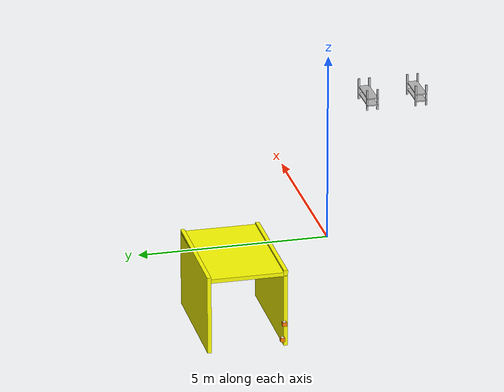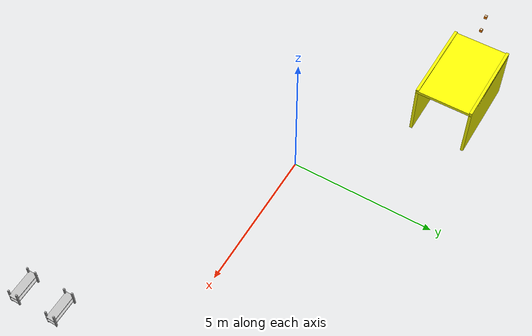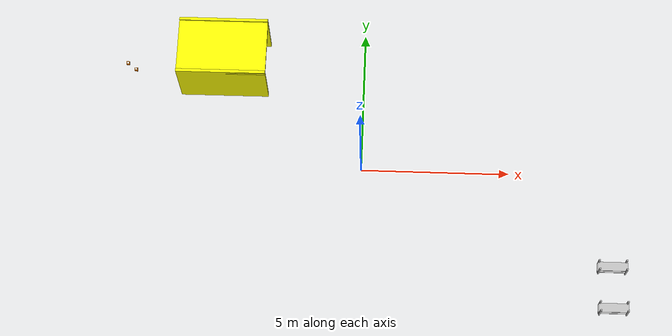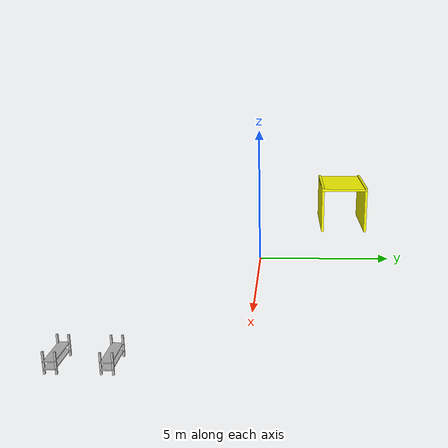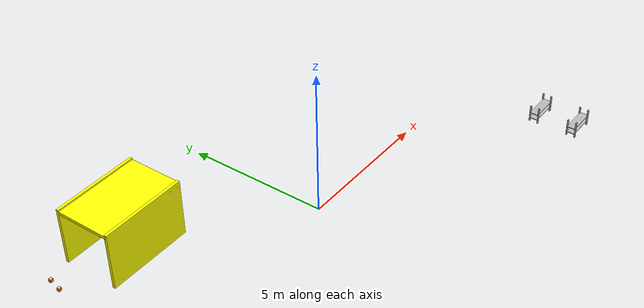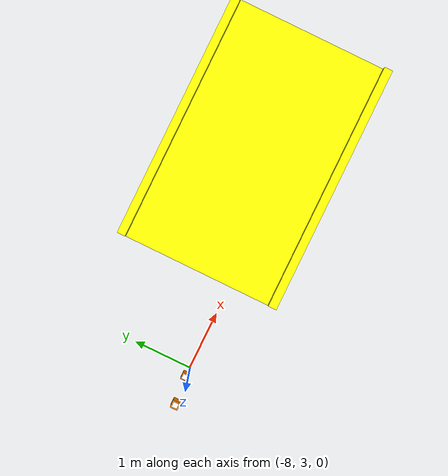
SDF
<sdf version="1.5">
 <world name="personal_project_world">
  <physics name="default_physics" default="0" type="ode">
   <gravity>0 0 -9.8066</gravity>
   <ode>
    <solver>
     <type>quick</type>
     <iters>5</iters>
     <sor>1.3</sor>
     <use_dynamic_moi_rescaling>0</use_dynamic_moi_rescaling>
    </solver>
    <constraints>
     <cfm>0</cfm>
     <erp>0.2</erp>
     <contact_max_correcting_vel>100</contact_max_correcting_vel>
     <contact_surface_layer>0.001</contact_surface_layer>
     <max_contacts>4</max_contacts>
    </constraints>
   </ode>
   <max_step_size>0.007</max_step_size>
   <real_time_factor>1</real_time_factor>
   <real_time_update_rate>50</real_time_update_rate>
   <magnetic_field>6.0e-6 2.3e-5 -4.2e-5</magnetic_field>
  </physics>
  <light type="directional" name="sun">
   <pose>0 0 10 0 0 0</pose>
   <diffuse>0.6 0.4 0.2 1</diffuse>
   <specular>0.2 0.2 0.2 1</specular>
   <attenuation>
    <range>1000</range>
    <constant>0.9</constant>
    <linear>0.01</linear>
    <quadratic>0.001</quadratic>
   </attenuation>
   <direction>-0.5 0.1 -0.9</direction>
  </light>
  <include><name>rect_tunnel</name><pose>-4.8 3.6 0.1 0 0 0</pose><uri>model://rect_tunnel</uri></include>
  <include><name>shelf_1</name><pose>8.40 -4.70 0.1 0 0 0</pose><uri>model://shelf</uri></include>
  <include><name>shelf_2</name><pose>8.40 -3.30 0.1 0 0 0</pose><uri>model://shelf</uri></include>
  <plugin filename="gz-sim-physics-system" name="gz::sim::systems::Physics"/>
  <plugin filename="gz-sim-user-commands-system" name="gz::sim::systems::UserCommands"/>
  <plugin filename="gz-sim-scene-broadcaster-system" name="gz::sim::systems::SceneBroadcaster"/>
  <model name="package1">
   <pose>-7.8 3.10 1.0 0 0 0</pose>
   <static>false</static>
   <link name="package_link">
    <inertial>
     <mass>0.1</mass>
     <inertia>
      <ixx>0.000027</ixx>
      <iyy>0.000027</iyy>
      <izz>0.0000375</izz>
      <ixy>0</ixy>
      <ixz>0</ixz>
      <iyz>0</iyz>
     </inertia>
     <linear_damping>10.0</linear_damping>
     <angular_damping>10.0</angular_damping>
    </inertial>
    <collision name="collision">
     <geometry><box><size>0.1 0.1 0.1</size></box></geometry>
     <surface>
      <friction><ode><mu>1000000.0</mu><mu2>50000.0</mu2></ode></friction>
      <contact><ode><kp>10.0</kp><kd>1.0</kd><min_depth>0.001</min_depth><max_vel>0.1</max_vel></ode></contact>
     </surface>
    </collision>
    <visual name="visual">
     <geometry><box><size>0.1 0.1 0.1</size></box></geometry>
     <material><ambient>1 0.5 0 1</ambient><diffuse>1 0.5 0 1</diffuse></material>
    </visual>
   </link>
   <include><uri>model://aruco0</uri><pose>0 0 0.051 0 0 4.71</pose></include>
   <joint name="tag_joint_1" type="fixed"><parent>package_link</parent><child>aruco0::aruco_link</child></joint>
  </model>
  <model name="package2">
   <pose>-8.0 3.10 1.5 0 0 0</pose>
   <static>false</static>
   <link name="package_link">
    <inertial>
     <mass>0.1</mass>
     <inertia>
      <ixx>0.000027</ixx>
      <iyy>0.000027</iyy>
      <izz>0.0000375</izz>
      <ixy>0</ixy>
      <ixz>0</ixz>
      <iyz>0</iyz>
     </inertia>
     <linear_damping>10.0</linear_damping>
     <angular_damping>10.0</angular_damping>
    </inertial>
    <collision name="collision"><geometry><box><size>0.1 0.1 0.1</size></box></geometry></collision>
    <visual name="visual">
     <geometry><box><size>0.1 0.1 0.1</size></box></geometry>
     <material><ambient>1 0.5 0 1</ambient><diffuse>1 0.5 0 1</diffuse></material>
    </visual>
   </link>
   <include><uri>model://aruco999</uri><pose>0 0 0.051 0 0 1.57</pose></include>
   <joint name="tag_joint_2" type="fixed">
    <parent>package_link</parent>
    <child>aruco999::aruco_link</child>
   </joint>
  </model>
 </world>
</sdf>

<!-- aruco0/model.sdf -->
<sdf version="1.6">
  <model name="aruco0">
    <static>true</static>
    <link name="aruco_link">

      <inertial>
        <mass>0.001</mass> <inertia>
          <ixx>0.00000012</ixx>
          <ixy>0</ixy>
          <ixz>0</ixz>
          <iyy>0.00000012</iyy>
          <iyz>0</iyz>
          <izz>0.000000000001</izz>
        </inertia>
      </inertial>

      <visual name="aruco_visual">
        <pose>0 0 0 0 0 0</pose>
        <geometry>
          <box>
            <size>0.07 0.07 0.001</size>
          </box>
        </geometry>
        <material>
          <diffuse>1 1 1 1</diffuse>
          <specular>0.4 0.4 0.4 1</specular>
          <pbr>
            <metal>
              <albedo_map>model://aruco0/materials/textures/aruco-0.png</albedo_map>
            </metal>
          </pbr>
        </material>
      </visual>

      <collision name="aruco_collision">
        <geometry>
          <box>
            <size>0.07 0.07 0.001</size>
          </box>
        </geometry>
      </collision>
    </link>
  </model>
</sdf>

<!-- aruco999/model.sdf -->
<sdf version="1.6">
  <model name="aruco999">
    <static>true</static>
    <link name="aruco_link">

      <inertial>
        <mass>0.001</mass> <inertia>
          <ixx>0.00000012</ixx>
          <ixy>0</ixy>
          <ixz>0</ixz>
          <iyy>0.00000012</iyy>
          <iyz>0</iyz>
          <izz>0.000000000001</izz>
        </inertia>
      </inertial>

      <visual name="aruco_visual">
        <pose>0 0 0 0 0 0</pose>
        <geometry>
          <box>
            <size>0.07 0.07 0.001</size>
          </box>
        </geometry>
        <material>
          <diffuse>1 1 1 1</diffuse>
          <specular>0.4 0.4 0.4 1</specular>
          <pbr>
            <metal>
              <albedo_map>model://aruco999/materials/textures/aruco-999.png</albedo_map>
            </metal>
          </pbr>
        </material>
      </visual>

      <collision name="aruco_collision">
        <geometry>
          <box>
            <size>0.1 0.1 0.001</size>
          </box>
        </geometry>
      </collision>
    </link>
  </model>
</sdf>

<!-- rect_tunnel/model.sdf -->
<sdf version="1.5">
  <model name="rect_tunnel">
    <static>true</static>

    <link name="tunnel_link">

      <collision name="roof_collision">
        <pose>0 0 1.9 0 0 0</pose>
        <geometry>
          <box>
            <size>3.0 2.0 0.1</size>
          </box>
        </geometry>
      </collision>

      <collision name="left_wall_collision">
        <pose>0 0.95 1.0 0 0 0</pose>
        <geometry>
          <box>
            <!-- lunghezza 4 m, spessore 0.1, altezza 2 m -->
            <size>4.0 0.1 2.0</size>
          </box>
        </geometry>
      </collision>

      <collision name="right_wall_collision">
        <pose>0 -0.95 1.0 0 0 0</pose>
        <geometry>
          <box>
            <size>3.0 0.1 2.0</size>
          </box>
        </geometry>
      </collision>

      <visual name="roof_visual">
        <pose>0 0 1.9 0 0 0</pose>
        <geometry>
          <box>
            <size>3.0 2.0 0.1</size>
          </box>
        </geometry>
        <material>
          <ambient>1 1 0 1</ambient>
          <diffuse>1 1 0 1</diffuse>
        </material>
      </visual>

      <visual name="left_wall_visual">
        <pose>0 0.95 1.0 0 0 0</pose>
        <geometry>
          <box>
            <size>3.0 0.1 2.0</size>
          </box>
        </geometry>
        <material>
          <ambient>1 1 0 1</ambient>
          <diffuse>1 1 0 1</diffuse>
        </material>
      </visual>

      <visual name="right_wall_visual">
        <pose>0 -0.95 1.0 0 0 0</pose>
        <geometry>
          <box>
            <size>3.0 0.1 2.0</size>
          </box>
        </geometry>
        <material>
          <ambient>1 1 0 1</ambient>
          <diffuse>1 1 0 1</diffuse>
        </material>
      </visual>

    </link>
  </model>
</sdf>

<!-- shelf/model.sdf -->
<sdf version="1.5">
  <model name="shelf">
    <static>true</static>
    <pose>0 0 0.85 0 0 0</pose>
    <link name="shelf_link">

      <!-- Montanti -->
      <visual name="leg_fl">
        <pose>-0.45 -0.15 0.3 0 0 0</pose>
        <geometry><box><size>0.05 0.05 0.6</size></box></geometry>
      </visual>
      <visual name="leg_fr">
        <pose>0.45 -0.15 0.3 0 0 0</pose>
        <geometry><box><size>0.05 0.05 0.6</size></box></geometry>
      </visual>
      <visual name="leg_bl">
        <pose>-0.45 0.15 0.3 0 0 0</pose>
        <geometry><box><size>0.05 0.05 0.6</size></box></geometry>
      </visual>
      <visual name="leg_br">
        <pose>0.45 0.15 0.3 0 0 0</pose>
        <geometry><box><size>0.05 0.05 0.6</size></box></geometry>
      </visual>

      <!-- Ripiani -->
      <visual name="shelf_1">
        <pose>0 0 0.15 0 0 0</pose>
        <geometry><box><size>1.0 0.3 0.03</size></box></geometry>
      </visual>
      <visual name="shelf_2">
        <pose>0 0 0.35 0 0 0</pose>
        <geometry><box><size>1.0 0.3 0.03</size></box></geometry>
      </visual>

      <!-- Collisione per i singoli ripiani -->
      <collision name="collision_shelf_1">
        <pose>0 0 0.15 0 0 0</pose>
        <geometry><box><size>1.0 0.3 0.03</size></box></geometry>
      </collision>
      <collision name="collision_shelf_2">
        <pose>0 0 0.35 0 0 0</pose>
        <geometry><box><size>1.0 0.3 0.03</size></box></geometry>
      </collision>

    </link>
  </model>
</sdf>
